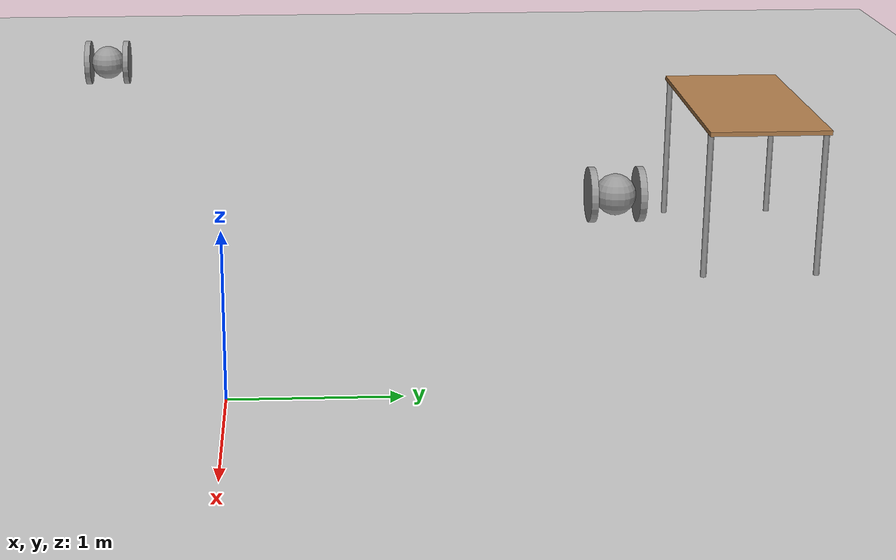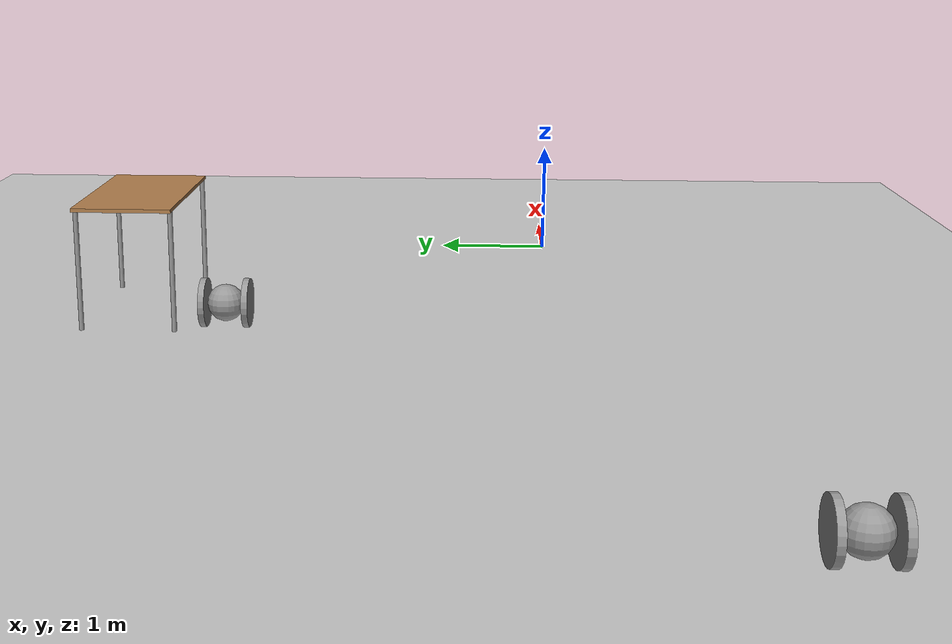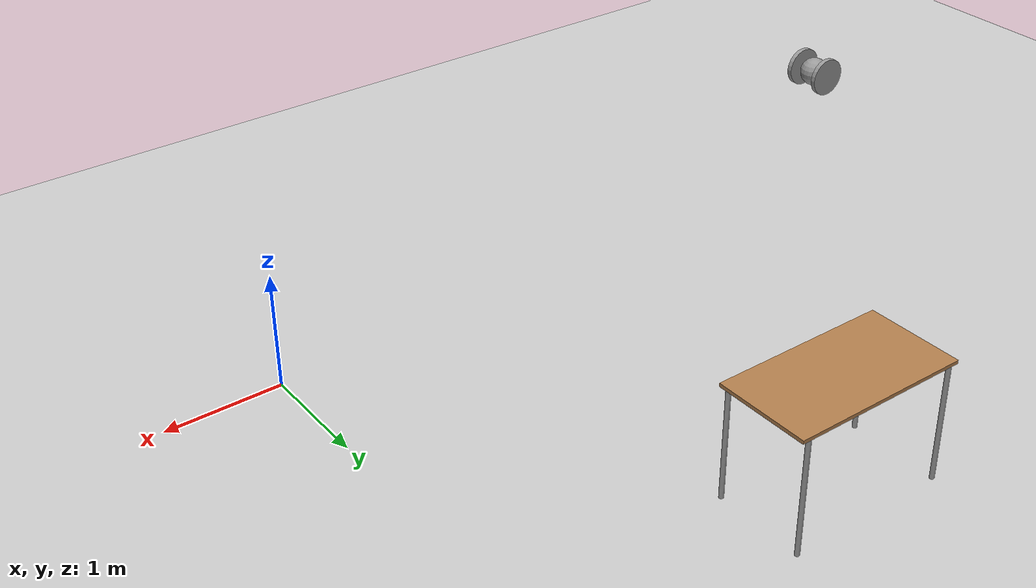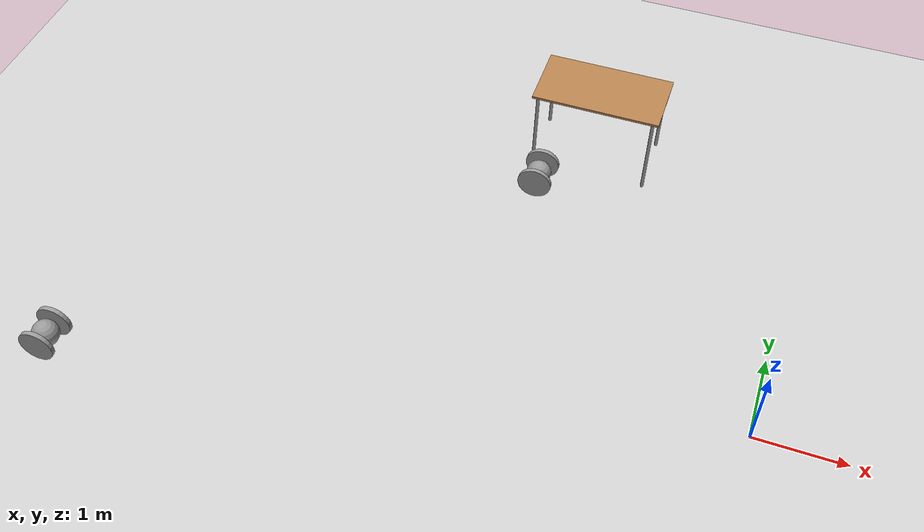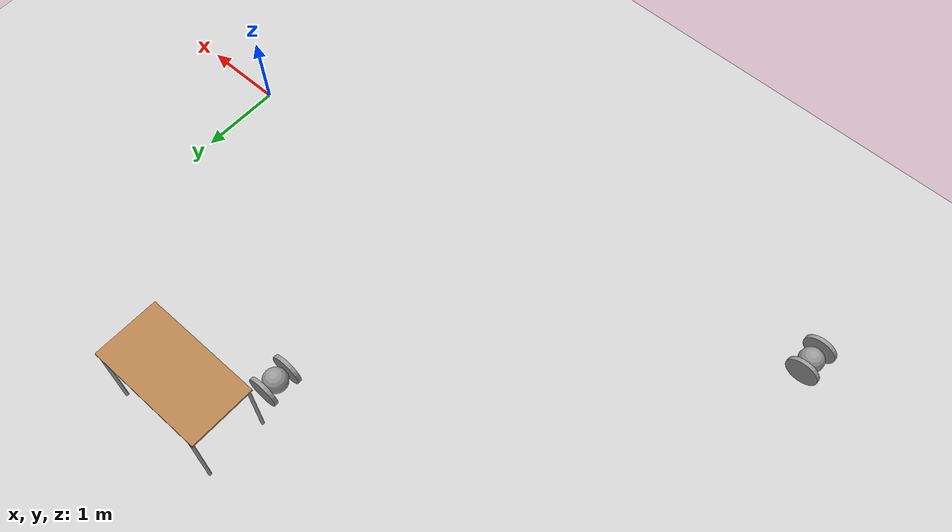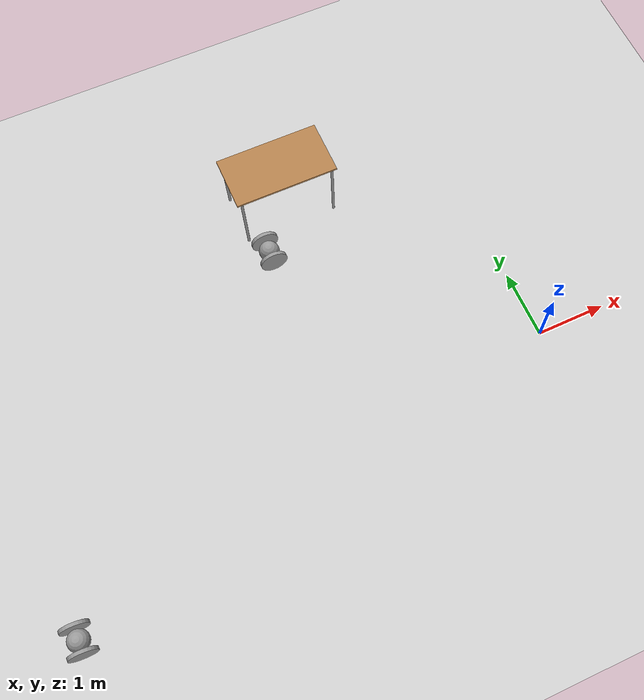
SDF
<sdf version="1.7">
 <world name="default">
  <model name="ground_plane">
   <static>1</static>
   <link name="link">
    <collision name="collision">
     <geometry><plane><normal>0 0 1</normal><size>100 100</size></plane></geometry>
     <surface><friction><ode><mu>100</mu><mu2>50</mu2></ode></friction></surface>
    </collision>
    <visual name="visual">
     <cast_shadows>0</cast_shadows>
     <geometry><plane><normal>0 0 1</normal><size>100 100</size></plane></geometry>
     <material>
      <script><uri>file://media/materials/scripts/gazebo.material</uri><name>Gazebo/Grey</name></script>
     </material>
    </visual>
   </link>
  </model>
  <model name="B8_0">
   <link name="link_4">
    <inertial>
     <mass>1</mass>
     <inertia><ixx>0.1</ixx><ixy>0</ixy><ixz>0</ixz><iyy>0.1</iyy><iyz>0</iyz><izz>0.1</izz></inertia>
    </inertial>
    <visual name="visual">
     <geometry><sphere><radius>0.15</radius></sphere></geometry>
     <material>
      <lighting>1</lighting>
      <script><uri>file://media/materials/scripts/gazebo.material</uri><name>Gazebo/Grey</name></script>
      <shader type="pixel"><normal_map>__default__</normal_map></shader>
      <ambient>0.3 0.3 0.3 1</ambient>
      <diffuse>0.7 0.7 0.7 1</diffuse>
      <specular>0.01 0.01 0.01 1</specular>
      <emissive>0 0 0 1</emissive>
     </material>
    </visual>
    <collision name="collision">
     <geometry><sphere><radius>0.15</radius></sphere></geometry>
     <surface>
      <friction>
       <ode><mu>1</mu><mu2>1</mu2><fdir1>0 0 0</fdir1><slip1>0</slip1><slip2>0</slip2></ode>
       <torsional>
        <coefficient>1</coefficient>
        <patch_radius>0</patch_radius>
        <surface_radius>0</surface_radius>
        <use_patch_radius>1</use_patch_radius>
        <ode><slip>0</slip></ode>
       </torsional>
      </friction>
      <bounce><restitution_coefficient>0</restitution_coefficient><threshold>1e+06</threshold></bounce>
      <contact>
       <collide_without_contact>0</collide_without_contact>
       <collide_without_contact_bitmask>1</collide_without_contact_bitmask>
       <collide_bitmask>1</collide_bitmask>
       <ode>
        <soft_cfm>0</soft_cfm>
        <soft_erp>0.2</soft_erp>
        <kp>1e+13</kp>
        <kd>1</kd>
        <max_vel>0.01</max_vel>
        <min_depth>0</min_depth>
       </ode>
       <bullet>
        <split_impulse>1</split_impulse>
        <split_impulse_penetration_threshold>-0.01</split_impulse_penetration_threshold>
        <soft_cfm>0</soft_cfm>
        <soft_erp>0.2</soft_erp>
        <kp>1e+13</kp>
        <kd>1</kd>
       </bullet>
      </contact>
     </surface>
    </collision>
   </link>
   <link name="link_5">
    <inertial>
     <mass>1</mass>
     <inertia><ixx>0.145833</ixx><ixy>0</ixy><ixz>0</ixz><iyy>0.145833</iyy><iyz>0</iyz><izz>0.125</izz></inertia>
    </inertial>
    <pose>0 -0.175001 0 1.5708 -0 0</pose>
    <visual name="visual">
     <geometry><cylinder><radius>0.2</radius><length>0.05</length></cylinder></geometry>
     <material>
      <lighting>1</lighting>
      <script><uri>file://media/materials/scripts/gazebo.material</uri><name>Gazebo/Grey</name></script>
      <shader type="pixel"><normal_map>__default__</normal_map></shader>
      <ambient>0.3 0.3 0.3 1</ambient>
      <diffuse>0.7 0.7 0.7 1</diffuse>
      <specular>0.01 0.01 0.01 1</specular>
      <emissive>0 0 0 1</emissive>
     </material>
    </visual>
    <collision name="collision">
     <geometry><cylinder><radius>0.2</radius><length>0.05</length></cylinder></geometry>
     <surface>
      <friction>
       <ode><mu>1</mu><mu2>1</mu2><fdir1>0 0 0</fdir1><slip1>0</slip1><slip2>0</slip2></ode>
       <torsional>
        <coefficient>1</coefficient>
        <patch_radius>0</patch_radius>
        <surface_radius>0</surface_radius>
        <use_patch_radius>1</use_patch_radius>
        <ode><slip>0</slip></ode>
       </torsional>
      </friction>
      <bounce><restitution_coefficient>0</restitution_coefficient><threshold>1e+06</threshold></bounce>
      <contact>
       <collide_without_contact>0</collide_without_contact>
       <collide_without_contact_bitmask>1</collide_without_contact_bitmask>
       <collide_bitmask>1</collide_bitmask>
       <ode>
        <soft_cfm>0</soft_cfm>
        <soft_erp>0.2</soft_erp>
        <kp>1e+13</kp>
        <kd>1</kd>
        <max_vel>0.01</max_vel>
        <min_depth>0</min_depth>
       </ode>
       <bullet>
        <split_impulse>1</split_impulse>
        <split_impulse_penetration_threshold>-0.01</split_impulse_penetration_threshold>
        <soft_cfm>0</soft_cfm>
        <soft_erp>0.2</soft_erp>
        <kp>1e+13</kp>
        <kd>1</kd>
       </bullet>
      </contact>
     </surface>
    </collision>
   </link>
   <link name="link_5_clone">
    <inertial>
     <mass>1</mass>
     <inertia><ixx>0.145833</ixx><ixy>0</ixy><ixz>0</ixz><iyy>0.145833</iyy><iyz>0</iyz><izz>0.125</izz></inertia>
    </inertial>
    <pose>0 0.175001 0 1.5708 -0 0</pose>
    <visual name="visual">
     <geometry><cylinder><radius>0.2</radius><length>0.05</length></cylinder></geometry>
     <material>
      <lighting>1</lighting>
      <script><uri>file://media/materials/scripts/gazebo.material</uri><name>Gazebo/Grey</name></script>
      <shader type="pixel"><normal_map>__default__</normal_map></shader>
      <ambient>0.3 0.3 0.3 1</ambient>
      <diffuse>0.7 0.7 0.7 1</diffuse>
      <specular>0.01 0.01 0.01 1</specular>
      <emissive>0 0 0 1</emissive>
     </material>
    </visual>
    <collision name="collision">
     <geometry><cylinder><radius>0.2</radius><length>0.05</length></cylinder></geometry>
     <surface>
      <friction>
       <ode><mu>1</mu><mu2>1</mu2><fdir1>0 0 0</fdir1><slip1>0</slip1><slip2>0</slip2></ode>
       <torsional>
        <coefficient>1</coefficient>
        <patch_radius>0</patch_radius>
        <surface_radius>0</surface_radius>
        <use_patch_radius>1</use_patch_radius>
        <ode><slip>0</slip></ode>
       </torsional>
      </friction>
      <bounce><restitution_coefficient>0</restitution_coefficient><threshold>1e+06</threshold></bounce>
      <contact>
       <collide_without_contact>0</collide_without_contact>
       <collide_without_contact_bitmask>1</collide_without_contact_bitmask>
       <collide_bitmask>1</collide_bitmask>
       <ode>
        <soft_cfm>0</soft_cfm>
        <soft_erp>0.2</soft_erp>
        <kp>1e+13</kp>
        <kd>1</kd>
        <max_vel>0.01</max_vel>
        <min_depth>0</min_depth>
       </ode>
       <bullet>
        <split_impulse>1</split_impulse>
        <split_impulse_penetration_threshold>-0.01</split_impulse_penetration_threshold>
        <soft_cfm>0</soft_cfm>
        <soft_erp>0.2</soft_erp>
        <kp>1e+13</kp>
        <kd>1</kd>
       </bullet>
      </contact>
     </surface>
    </collision>
   </link>
   <joint name="link_4_JOINT_21" type="revolute">
    <parent>link_4</parent>
    <child>link_5</child>
    <axis>
     <xyz>0 0 1</xyz>
     <limit>
      <lower>-1.79769e+308</lower>
      <upper>1.79769e+308</upper>
      <effort>-1</effort>
      <velocity>-1</velocity>
     </limit>
     <dynamics>
      <spring_reference>0</spring_reference>
      <spring_stiffness>0</spring_stiffness>
      <damping>0</damping>
     </dynamics>
    </axis>
    <physics>
     <ode><limit><cfm>0</cfm><erp>0.2</erp></limit><suspension><cfm>0</cfm><erp>0.2</erp></suspension></ode>
    </physics>
   </joint>
   <joint name="link_4_JOINT_22" type="revolute">
    <parent>link_4</parent>
    <child>link_5_clone</child>
    <axis>
     <xyz>0 0 1</xyz>
     <limit>
      <lower>-1.79769e+308</lower>
      <upper>1.79769e+308</upper>
      <effort>-1</effort>
      <velocity>-1</velocity>
     </limit>
     <dynamics>
      <spring_reference>0</spring_reference>
      <spring_stiffness>0</spring_stiffness>
      <damping>0</damping>
     </dynamics>
    </axis>
    <physics>
     <ode><limit><cfm>0</cfm><erp>0.2</erp></limit><suspension><cfm>0</cfm><erp>0.2</erp></suspension></ode>
    </physics>
   </joint>
   <static>0</static>
   <pose>-7.248 -1.37104 0.199999 -4e-06 0 0</pose>
  </model>
  <model name="B8_1">
   <link name="link_4">
    <inertial>
     <mass>1</mass>
     <inertia><ixx>0.1</ixx><ixy>0</ixy><ixz>0</ixz><iyy>0.1</iyy><iyz>0</iyz><izz>0.1</izz></inertia>
    </inertial>
    <visual name="visual">
     <geometry><sphere><radius>0.15</radius></sphere></geometry>
     <material>
      <lighting>1</lighting>
      <script><uri>file://media/materials/scripts/gazebo.material</uri><name>Gazebo/Grey</name></script>
      <shader type="pixel"><normal_map>__default__</normal_map></shader>
      <ambient>0.3 0.3 0.3 1</ambient>
      <diffuse>0.7 0.7 0.7 1</diffuse>
      <specular>0.01 0.01 0.01 1</specular>
      <emissive>0 0 0 1</emissive>
     </material>
    </visual>
    <collision name="collision">
     <geometry><sphere><radius>0.15</radius></sphere></geometry>
     <surface>
      <friction>
       <ode><mu>1</mu><mu2>1</mu2><fdir1>0 0 0</fdir1><slip1>0</slip1><slip2>0</slip2></ode>
       <torsional>
        <coefficient>1</coefficient>
        <patch_radius>0</patch_radius>
        <surface_radius>0</surface_radius>
        <use_patch_radius>1</use_patch_radius>
        <ode><slip>0</slip></ode>
       </torsional>
      </friction>
      <bounce><restitution_coefficient>0</restitution_coefficient><threshold>1e+06</threshold></bounce>
      <contact>
       <collide_without_contact>0</collide_without_contact>
       <collide_without_contact_bitmask>1</collide_without_contact_bitmask>
       <collide_bitmask>1</collide_bitmask>
       <ode>
        <soft_cfm>0</soft_cfm>
        <soft_erp>0.2</soft_erp>
        <kp>1e+13</kp>
        <kd>1</kd>
        <max_vel>0.01</max_vel>
        <min_depth>0</min_depth>
       </ode>
       <bullet>
        <split_impulse>1</split_impulse>
        <split_impulse_penetration_threshold>-0.01</split_impulse_penetration_threshold>
        <soft_cfm>0</soft_cfm>
        <soft_erp>0.2</soft_erp>
        <kp>1e+13</kp>
        <kd>1</kd>
       </bullet>
      </contact>
     </surface>
    </collision>
   </link>
   <link name="link_5">
    <inertial>
     <mass>1</mass>
     <inertia><ixx>0.145833</ixx><ixy>0</ixy><ixz>0</ixz><iyy>0.145833</iyy><iyz>0</iyz><izz>0.125</izz></inertia>
    </inertial>
    <pose>0 -0.175001 0 1.5708 -0 0</pose>
    <visual name="visual">
     <geometry><cylinder><radius>0.2</radius><length>0.05</length></cylinder></geometry>
     <material>
      <lighting>1</lighting>
      <script><uri>file://media/materials/scripts/gazebo.material</uri><name>Gazebo/Grey</name></script>
      <shader type="pixel"><normal_map>__default__</normal_map></shader>
      <ambient>0.3 0.3 0.3 1</ambient>
      <diffuse>0.7 0.7 0.7 1</diffuse>
      <specular>0.01 0.01 0.01 1</specular>
      <emissive>0 0 0 1</emissive>
     </material>
    </visual>
    <collision name="collision">
     <geometry><cylinder><radius>0.2</radius><length>0.05</length></cylinder></geometry>
     <surface>
      <friction>
       <ode><mu>1</mu><mu2>1</mu2><fdir1>0 0 0</fdir1><slip1>0</slip1><slip2>0</slip2></ode>
       <torsional>
        <coefficient>1</coefficient>
        <patch_radius>0</patch_radius>
        <surface_radius>0</surface_radius>
        <use_patch_radius>1</use_patch_radius>
        <ode><slip>0</slip></ode>
       </torsional>
      </friction>
      <bounce><restitution_coefficient>0</restitution_coefficient><threshold>1e+06</threshold></bounce>
      <contact>
       <collide_without_contact>0</collide_without_contact>
       <collide_without_contact_bitmask>1</collide_without_contact_bitmask>
       <collide_bitmask>1</collide_bitmask>
       <ode>
        <soft_cfm>0</soft_cfm>
        <soft_erp>0.2</soft_erp>
        <kp>1e+13</kp>
        <kd>1</kd>
        <max_vel>0.01</max_vel>
        <min_depth>0</min_depth>
       </ode>
       <bullet>
        <split_impulse>1</split_impulse>
        <split_impulse_penetration_threshold>-0.01</split_impulse_penetration_threshold>
        <soft_cfm>0</soft_cfm>
        <soft_erp>0.2</soft_erp>
        <kp>1e+13</kp>
        <kd>1</kd>
       </bullet>
      </contact>
     </surface>
    </collision>
   </link>
   <link name="link_5_clone">
    <inertial>
     <mass>1</mass>
     <inertia><ixx>0.145833</ixx><ixy>0</ixy><ixz>0</ixz><iyy>0.145833</iyy><iyz>0</iyz><izz>0.125</izz></inertia>
    </inertial>
    <pose>0 0.175001 0 1.5708 -0 0</pose>
    <visual name="visual">
     <geometry><cylinder><radius>0.2</radius><length>0.05</length></cylinder></geometry>
     <material>
      <lighting>1</lighting>
      <script><uri>file://media/materials/scripts/gazebo.material</uri><name>Gazebo/Grey</name></script>
      <shader type="pixel"><normal_map>__default__</normal_map></shader>
      <ambient>0.3 0.3 0.3 1</ambient>
      <diffuse>0.7 0.7 0.7 1</diffuse>
      <specular>0.01 0.01 0.01 1</specular>
      <emissive>0 0 0 1</emissive>
     </material>
    </visual>
    <collision name="collision">
     <geometry><cylinder><radius>0.2</radius><length>0.05</length></cylinder></geometry>
     <surface>
      <friction>
       <ode><mu>1</mu><mu2>1</mu2><fdir1>0 0 0</fdir1><slip1>0</slip1><slip2>0</slip2></ode>
       <torsional>
        <coefficient>1</coefficient>
        <patch_radius>0</patch_radius>
        <surface_radius>0</surface_radius>
        <use_patch_radius>1</use_patch_radius>
        <ode><slip>0</slip></ode>
       </torsional>
      </friction>
      <bounce><restitution_coefficient>0</restitution_coefficient><threshold>1e+06</threshold></bounce>
      <contact>
       <collide_without_contact>0</collide_without_contact>
       <collide_without_contact_bitmask>1</collide_without_contact_bitmask>
       <collide_bitmask>1</collide_bitmask>
       <ode>
        <soft_cfm>0</soft_cfm>
        <soft_erp>0.2</soft_erp>
        <kp>1e+13</kp>
        <kd>1</kd>
        <max_vel>0.01</max_vel>
        <min_depth>0</min_depth>
       </ode>
       <bullet>
        <split_impulse>1</split_impulse>
        <split_impulse_penetration_threshold>-0.01</split_impulse_penetration_threshold>
        <soft_cfm>0</soft_cfm>
        <soft_erp>0.2</soft_erp>
        <kp>1e+13</kp>
        <kd>1</kd>
       </bullet>
      </contact>
     </surface>
    </collision>
   </link>
   <joint name="link_4_JOINT_21" type="revolute">
    <parent>link_4</parent>
    <child>link_5</child>
    <axis>
     <xyz>0 0 1</xyz>
     <limit>
      <lower>-1.79769e+308</lower>
      <upper>1.79769e+308</upper>
      <effort>-1</effort>
      <velocity>-1</velocity>
     </limit>
     <dynamics>
      <spring_reference>0</spring_reference>
      <spring_stiffness>0</spring_stiffness>
      <damping>0</damping>
     </dynamics>
    </axis>
    <physics>
     <ode><limit><cfm>0</cfm><erp>0.2</erp></limit><suspension><cfm>0</cfm><erp>0.2</erp></suspension></ode>
    </physics>
   </joint>
   <joint name="link_4_JOINT_22" type="revolute">
    <parent>link_4</parent>
    <child>link_5_clone</child>
    <axis>
     <xyz>0 0 1</xyz>
     <limit>
      <lower>-1.79769e+308</lower>
      <upper>1.79769e+308</upper>
      <effort>-1</effort>
      <velocity>-1</velocity>
     </limit>
     <dynamics>
      <spring_reference>0</spring_reference>
      <spring_stiffness>0</spring_stiffness>
      <damping>0</damping>
     </dynamics>
    </axis>
    <physics>
     <ode><limit><cfm>0</cfm><erp>0.2</erp></limit><suspension><cfm>0</cfm><erp>0.2</erp></suspension></ode>
    </physics>
   </joint>
   <static>0</static>
   <pose>-3.01563 2.69645 0.199999 -6e-06 0 0</pose>
  </model>
  <model name="table_0">
   <static>1</static>
   <link name="link">
    <collision name="surface">
     <pose>0 0 1 0 -0 0</pose>
     <geometry><box><size>1.5 0.8 0.03</size></box></geometry>
     <surface><friction><ode><mu>0.6</mu><mu2>0.6</mu2></ode></friction></surface>
    </collision>
    <visual name="visual1">
     <pose>0 0 1 0 -0 0</pose>
     <geometry><box><size>1.5 0.8 0.03</size></box></geometry>
     <material>
      <script><uri>file://media/materials/scripts/gazebo.material</uri><name>Gazebo/Wood</name></script>
     </material>
    </visual>
    <collision name="front_left_leg">
     <pose>0.68 0.38 0.5 0 -0 0</pose>
     <geometry><cylinder><radius>0.02</radius><length>1</length></cylinder></geometry>
    </collision>
    <visual name="front_left_leg">
     <pose>0.68 0.38 0.5 0 -0 0</pose>
     <geometry><cylinder><radius>0.02</radius><length>1</length></cylinder></geometry>
     <material>
      <script><uri>file://media/materials/scripts/gazebo.material</uri><name>Gazebo/Grey</name></script>
     </material>
    </visual>
    <collision name="front_right_leg">
     <pose>0.68 -0.38 0.5 0 -0 0</pose>
     <geometry><cylinder><radius>0.02</radius><length>1</length></cylinder></geometry>
    </collision>
    <visual name="front_right_leg">
     <pose>0.68 -0.38 0.5 0 -0 0</pose>
     <geometry><cylinder><radius>0.02</radius><length>1</length></cylinder></geometry>
     <material>
      <script><uri>file://media/materials/scripts/gazebo.material</uri><name>Gazebo/Grey</name></script>
     </material>
    </visual>
    <collision name="back_right_leg">
     <pose>-0.68 -0.38 0.5 0 -0 0</pose>
     <geometry><cylinder><radius>0.02</radius><length>1</length></cylinder></geometry>
    </collision>
    <visual name="back_right_leg">
     <pose>-0.68 -0.38 0.5 0 -0 0</pose>
     <geometry><cylinder><radius>0.02</radius><length>1</length></cylinder></geometry>
     <material>
      <script><uri>file://media/materials/scripts/gazebo.material</uri><name>Gazebo/Grey</name></script>
     </material>
    </visual>
    <collision name="back_left_leg">
     <pose>-0.68 0.38 0.5 0 -0 0</pose>
     <geometry><cylinder><radius>0.02</radius><length>1</length></cylinder></geometry>
    </collision>
    <visual name="back_left_leg">
     <pose>-0.68 0.38 0.5 0 -0 0</pose>
     <geometry><cylinder><radius>0.02</radius><length>1</length></cylinder></geometry>
     <material>
      <script><uri>file://media/materials/scripts/gazebo.material</uri><name>Gazebo/Grey</name></script>
     </material>
    </visual>
   </link>
   <pose>-2.51061 3.47308 0 0 -0 0</pose>
  </model>
 </world>
</sdf>
